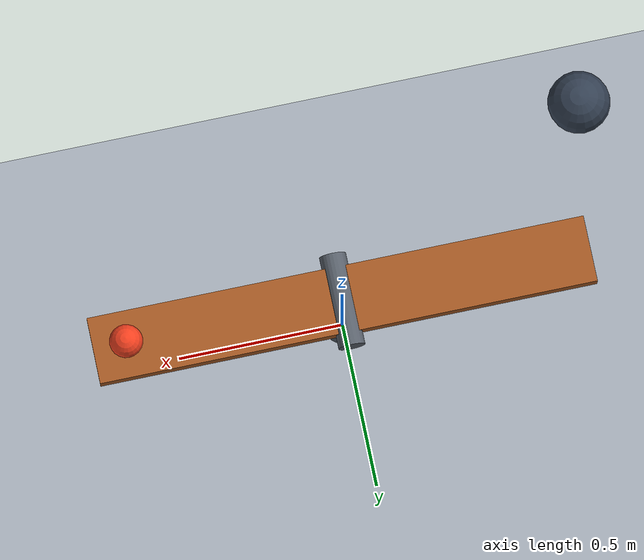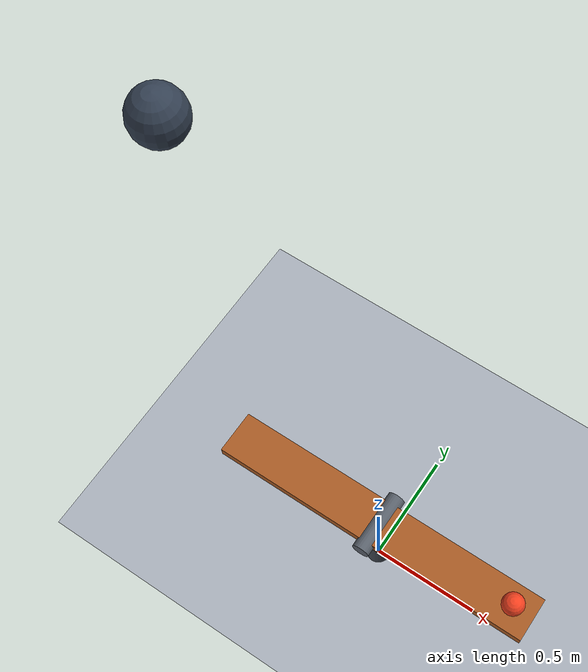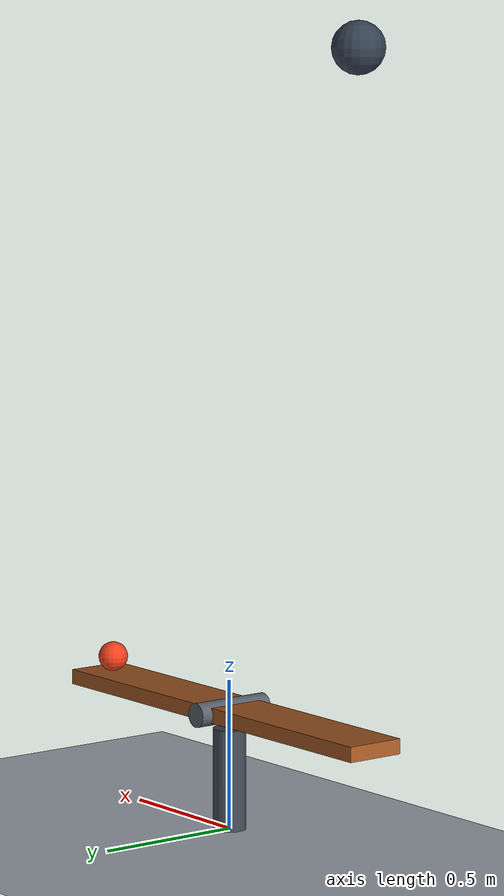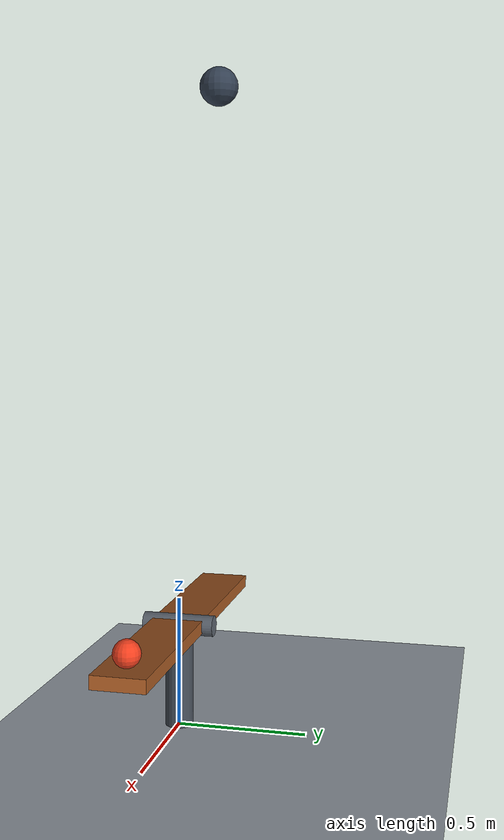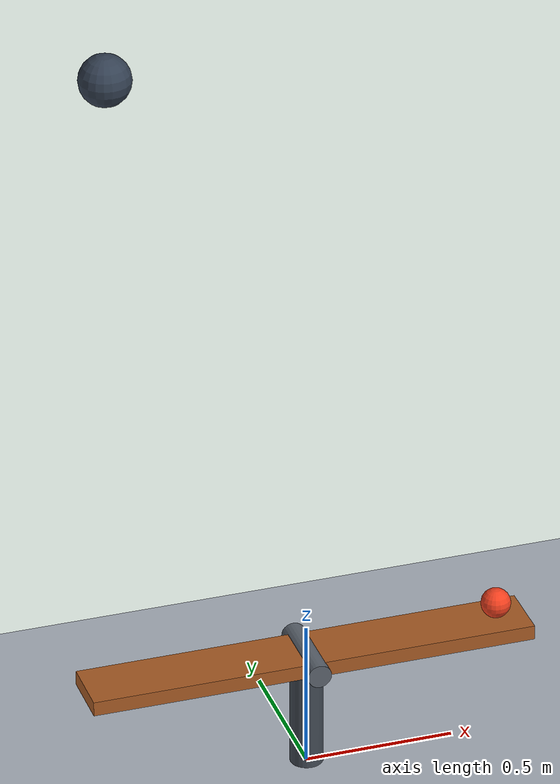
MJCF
<mujoco model="gravity_seesaw_launcher">
  <compiler angle="radian"/>
  <option timestep="0.002" gravity="0 0 -9.81" integrator="implicitfast" cone="elliptic" iterations="100"/>

  <worldbody>
    <light name="overhead" pos="0 -2 4" dir="0 0 -1"/>
    <camera name="overview" pos="3 -5 2.4" xyaxes="0.857 0.514 0 -0.185 0.308 0.933"/>

    <geom name="floor" type="plane" size="5 5 0.1" condim="6" friction="1.2 0.02 0.05" solref="0.008 1" solimp="0.95 0.99 0.001" rgba="0.65 0.68 0.72 1"/>

    <body name="fulcrum" pos="0 0 0">
      <geom name="pedestal" type="cylinder" pos="0 0 0.17" size="0.055 0.17" contype="0" conaffinity="0" rgba="0.25 0.28 0.32 1"/>
      <geom name="axle" type="cylinder" pos="0 0 0.4" quat="0.70710678 0.70710678 0 0" size="0.04 0.14" contype="0" conaffinity="0" rgba="0.35 0.38 0.42 1"/>
    </body>

    <body name="seesaw" pos="0 0 0.4">
      <joint name="seesaw_hinge" type="hinge" axis="0 1 0" limited="true" range="-0.45 0.15" frictionloss="0.8" damping="0.02" solreflimit="0.008 1"/>
      <geom name="seesaw_board" type="box" size="0.75 0.10 0.025" mass="0.2" condim="6" friction="1.2 0.02 0.05" solref="0.008 1" solimp="0.95 0.99 0.001" rgba="0.65 0.35 0.14 1"/>
    </body>

    <body name="weight" pos="-0.65 0 2.6">
      <freejoint name="weight_free"/>
      <geom name="weight_sphere" type="sphere" size="0.085" mass="1" condim="6" friction="1.2 0.02 0.05" solref="0.008 1" solimp="0.95 0.99 0.001" rgba="0.20 0.25 0.32 1"/>
    </body>

    <body name="ball" pos="0.65 0 0.475">
      <freejoint name="ball_free"/>
      <geom name="ball" type="sphere" size="0.05" mass="0.1" condim="6" friction="1.2 0.02 0.05" solref="0.008 1" solimp="0.95 0.99 0.001" rgba="0.95 0.25 0.12 1"/>
    </body>
  </worldbody>

  <keyframe>
    <key name="start" qpos="0 -0.65 0 2.6 1 0 0 0 0.65 0 0.475 1 0 0 0"/>
  </keyframe>
</mujoco>
